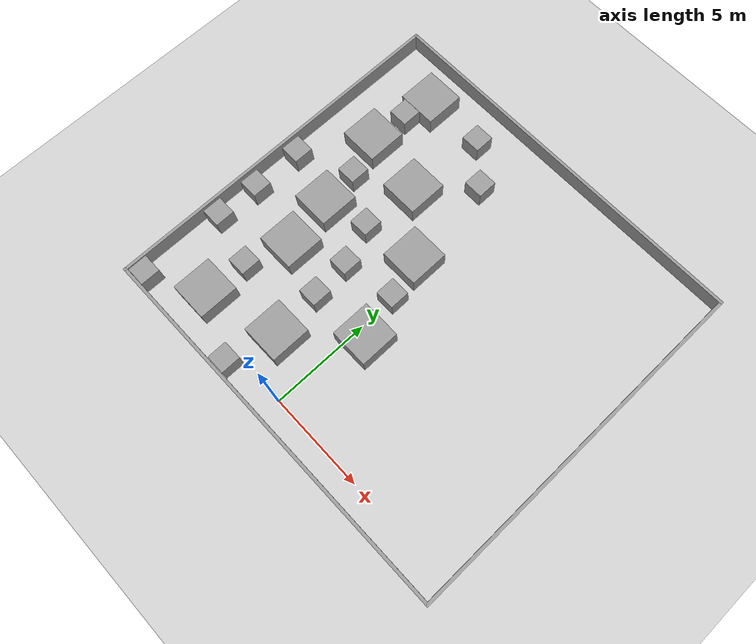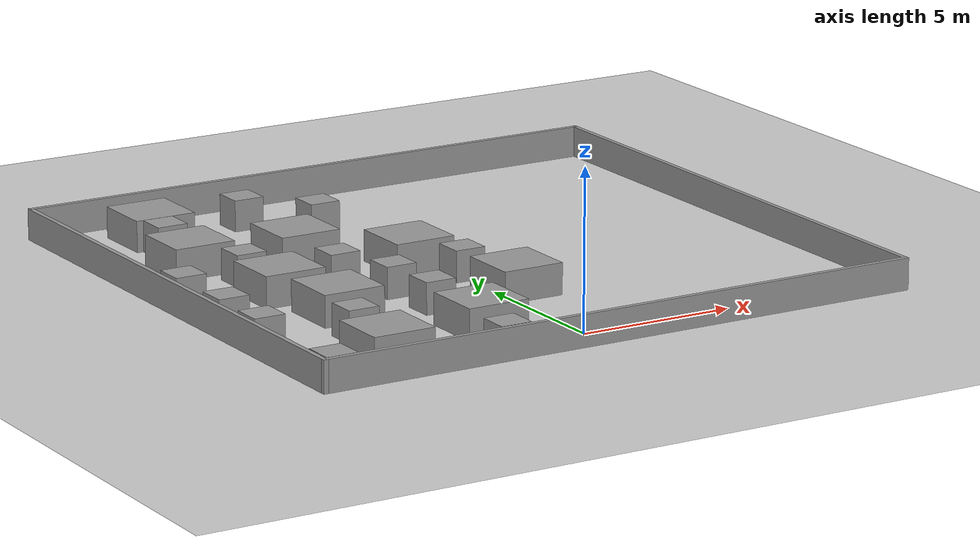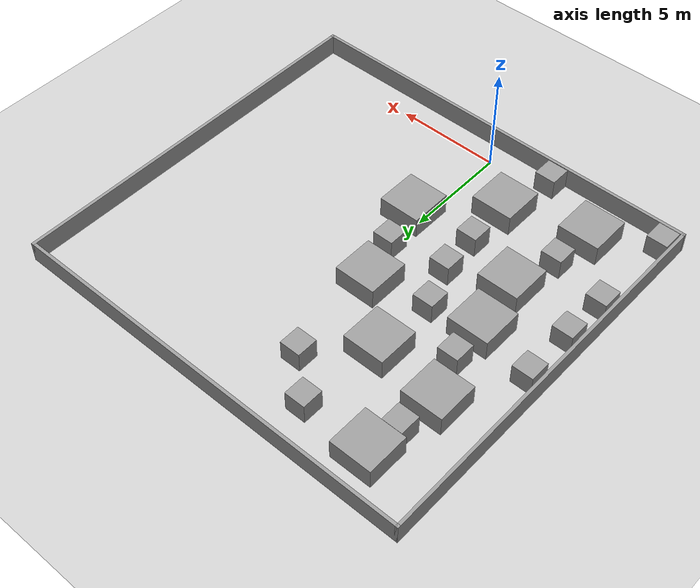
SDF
<sdf version="1.6">
 <world name="default">
  <model name="ground_plane">
   <static>1</static>
   <link name="link">
    <collision name="collision">
     <geometry><plane><normal>0 0 1</normal><size>100 100</size></plane></geometry>
     <surface><friction><ode><mu>100</mu><mu2>50</mu2></ode></friction></surface>
    </collision>
    <visual name="visual">
     <cast_shadows>0</cast_shadows>
     <geometry><plane><normal>0 0 1</normal><size>100 100</size></plane></geometry>
     <material>
      <script><uri>file://media/materials/scripts/gazebo.material</uri><name>Gazebo/Grey</name></script>
     </material>
    </visual>
   </link>
  </model>
  <model name="map1">
   <pose>0.697678 8.0747 0 0 -0 0</pose>
   <link name="Wall_0">
    <collision name="Wall_0_Collision">
     <geometry><box><size>20 0.15 1</size></box></geometry>
     <pose>0 0 0.5 0 -0 0</pose>
    </collision>
    <visual name="Wall_0_Visual">
     <pose>0 0 0.5 0 -0 0</pose>
     <geometry><box><size>20 0.15 1</size></box></geometry>
     <material>
      <script><uri>file://media/materials/scripts/gazebo.material</uri><name>Gazebo/Grey</name></script>
      <ambient>1 1 1 1</ambient>
     </material>
     <meta><layer>0</layer></meta>
    </visual>
    <pose>0 9.175 0 0 -0 0</pose>
   </link>
   <link name="Wall_3">
    <collision name="Wall_3_Collision">
     <geometry><box><size>18.5 0.15 1</size></box></geometry>
     <pose>0 0 0.5 0 -0 0</pose>
    </collision>
    <visual name="Wall_3_Visual">
     <pose>0 0 0.5 0 -0 0</pose>
     <geometry><box><size>18.5 0.15 1</size></box></geometry>
     <material>
      <script><uri>file://media/materials/scripts/gazebo.material</uri><name>Gazebo/Grey</name></script>
      <ambient>1 1 1 1</ambient>
     </material>
     <meta><layer>0</layer></meta>
    </visual>
    <pose>9.925 0 0 0 -0 -1.5708</pose>
   </link>
   <link name="Wall_4">
    <collision name="Wall_4_Collision">
     <geometry><box><size>20 0.15 1</size></box></geometry>
     <pose>0 0 0.5 0 -0 0</pose>
    </collision>
    <visual name="Wall_4_Visual">
     <pose>0 0 0.5 0 -0 0</pose>
     <geometry><box><size>20 0.15 1</size></box></geometry>
     <material>
      <script><uri>file://media/materials/scripts/gazebo.material</uri><name>Gazebo/Grey</name></script>
      <ambient>1 1 1 1</ambient>
     </material>
     <meta><layer>0</layer></meta>
    </visual>
    <pose>0 -9.175 0 0 -0 3.14159</pose>
   </link>
   <link name="Wall_5">
    <collision name="Wall_5_Collision">
     <geometry><box><size>18.5 0.15 1</size></box></geometry>
     <pose>0 0 0.5 0 -0 0</pose>
    </collision>
    <visual name="Wall_5_Visual">
     <pose>0 0 0.5 0 -0 0</pose>
     <geometry><box><size>18.5 0.15 1</size></box></geometry>
     <material>
      <script><uri>file://media/materials/scripts/gazebo.material</uri><name>Gazebo/Grey</name></script>
      <ambient>1 1 1 1</ambient>
     </material>
     <meta><layer>0</layer></meta>
    </visual>
    <pose>-9.925 0 0 0 -0 1.5708</pose>
   </link>
   <static>1</static>
  </model>
  <model name="box3_clone_2">
   <link name="link_0">
    <inertial>
     <mass>200</mass>
     <inertia><ixx>83.3333</ixx><ixy>0</ixy><ixz>0</ixz><iyy>83.3333</iyy><iyz>0</iyz><izz>133.333</izz></inertia>
     <pose>0 0 1 0 -0 0</pose>
    </inertial>
    <visual name="visual">
     <geometry><box><size>2 2 1</size></box></geometry>
     <material>
      <lighting>1</lighting>
      <script><uri>file://media/materials/scripts/gazebo.material</uri><name>Gazebo/Grey</name></script>
      <shader type="pixel"><normal_map>__default__</normal_map></shader>
      <ambient>0.3 0.3 0.3 1</ambient>
      <diffuse>0.7 0.7 0.7 1</diffuse>
      <specular>0.01 0.01 0.01 1</specular>
      <emissive>0 0 0 1</emissive>
     </material>
    </visual>
    <collision name="collision">
     <geometry><box><size>2 2 1</size></box></geometry>
     <surface>
      <friction>
       <ode><mu>1</mu><mu2>1</mu2><fdir1>0 0 0</fdir1><slip1>0</slip1><slip2>0</slip2></ode>
       <torsional>
        <coefficient>1</coefficient>
        <patch_radius>0</patch_radius>
        <surface_radius>0</surface_radius>
        <use_patch_radius>1</use_patch_radius>
        <ode><slip>0</slip></ode>
       </torsional>
      </friction>
      <bounce><restitution_coefficient>0</restitution_coefficient><threshold>1e+06</threshold></bounce>
      <contact>
       <collide_without_contact>0</collide_without_contact>
       <collide_without_contact_bitmask>1</collide_without_contact_bitmask>
       <collide_bitmask>1</collide_bitmask>
       <ode>
        <soft_cfm>0</soft_cfm>
        <soft_erp>0.2</soft_erp>
        <kp>1e+13</kp>
        <kd>1</kd>
        <max_vel>0.01</max_vel>
        <min_depth>0</min_depth>
       </ode>
       <bullet>
        <split_impulse>1</split_impulse>
        <split_impulse_penetration_threshold>-0.01</split_impulse_penetration_threshold>
        <soft_cfm>0</soft_cfm>
        <soft_erp>0.2</soft_erp>
        <kp>1e+13</kp>
        <kd>1</kd>
       </bullet>
      </contact>
     </surface>
    </collision>
   </link>
   <static>0</static>
   <pose>0.599355 4.71049 0.499996 -3e-06 1e-06 0.000372</pose>
  </model>
  <model name="box3_clone_2_clone">
   <link name="link_0">
    <inertial>
     <mass>200</mass>
     <inertia><ixx>83.3333</ixx><ixy>0</ixy><ixz>0</ixz><iyy>83.3333</iyy><iyz>0</iyz><izz>133.333</izz></inertia>
     <pose>0 0 1 0 -0 0</pose>
    </inertial>
    <visual name="visual">
     <geometry><box><size>2 2 1</size></box></geometry>
     <material>
      <lighting>1</lighting>
      <script><uri>file://media/materials/scripts/gazebo.material</uri><name>Gazebo/Grey</name></script>
      <shader type="pixel"><normal_map>__default__</normal_map></shader>
      <ambient>0.3 0.3 0.3 1</ambient>
      <diffuse>0.7 0.7 0.7 1</diffuse>
      <specular>0.01 0.01 0.01 1</specular>
      <emissive>0 0 0 1</emissive>
     </material>
    </visual>
    <collision name="collision">
     <geometry><box><size>2 2 1</size></box></geometry>
     <surface>
      <friction>
       <ode><mu>1</mu><mu2>1</mu2><fdir1>0 0 0</fdir1><slip1>0</slip1><slip2>0</slip2></ode>
       <torsional>
        <coefficient>1</coefficient>
        <patch_radius>0</patch_radius>
        <surface_radius>0</surface_radius>
        <use_patch_radius>1</use_patch_radius>
        <ode><slip>0</slip></ode>
       </torsional>
      </friction>
      <bounce><restitution_coefficient>0</restitution_coefficient><threshold>1e+06</threshold></bounce>
      <contact>
       <collide_without_contact>0</collide_without_contact>
       <collide_without_contact_bitmask>1</collide_without_contact_bitmask>
       <collide_bitmask>1</collide_bitmask>
       <ode>
        <soft_cfm>0</soft_cfm>
        <soft_erp>0.2</soft_erp>
        <kp>1e+13</kp>
        <kd>1</kd>
        <max_vel>0.01</max_vel>
        <min_depth>0</min_depth>
       </ode>
       <bullet>
        <split_impulse>1</split_impulse>
        <split_impulse_penetration_threshold>-0.01</split_impulse_penetration_threshold>
        <soft_cfm>0</soft_cfm>
        <soft_erp>0.2</soft_erp>
        <kp>1e+13</kp>
        <kd>1</kd>
       </bullet>
      </contact>
     </surface>
    </collision>
   </link>
   <static>0</static>
   <pose>-2.2638 1.99782 0.499996 1e-06 3e-06 0.000332</pose>
  </model>
  <model name="box3_clone_2_clone_0">
   <link name="link_0">
    <inertial>
     <mass>200</mass>
     <inertia><ixx>83.3333</ixx><ixy>0</ixy><ixz>0</ixz><iyy>83.3333</iyy><iyz>0</iyz><izz>133.333</izz></inertia>
     <pose>0 0 1 0 -0 0</pose>
    </inertial>
    <visual name="visual">
     <geometry><box><size>2 2 1</size></box></geometry>
     <material>
      <lighting>1</lighting>
      <script><uri>file://media/materials/scripts/gazebo.material</uri><name>Gazebo/Grey</name></script>
      <shader type="pixel"><normal_map>__default__</normal_map></shader>
      <ambient>0.3 0.3 0.3 1</ambient>
      <diffuse>0.7 0.7 0.7 1</diffuse>
      <specular>0.01 0.01 0.01 1</specular>
      <emissive>0 0 0 1</emissive>
     </material>
    </visual>
    <collision name="collision">
     <geometry><box><size>2 2 1</size></box></geometry>
     <surface>
      <friction>
       <ode><mu>1</mu><mu2>1</mu2><fdir1>0 0 0</fdir1><slip1>0</slip1><slip2>0</slip2></ode>
       <torsional>
        <coefficient>1</coefficient>
        <patch_radius>0</patch_radius>
        <surface_radius>0</surface_radius>
        <use_patch_radius>1</use_patch_radius>
        <ode><slip>0</slip></ode>
       </torsional>
      </friction>
      <bounce><restitution_coefficient>0</restitution_coefficient><threshold>1e+06</threshold></bounce>
      <contact>
       <collide_without_contact>0</collide_without_contact>
       <collide_without_contact_bitmask>1</collide_without_contact_bitmask>
       <collide_bitmask>1</collide_bitmask>
       <ode>
        <soft_cfm>0</soft_cfm>
        <soft_erp>0.2</soft_erp>
        <kp>1e+13</kp>
        <kd>1</kd>
        <max_vel>0.01</max_vel>
        <min_depth>0</min_depth>
       </ode>
       <bullet>
        <split_impulse>1</split_impulse>
        <split_impulse_penetration_threshold>-0.01</split_impulse_penetration_threshold>
        <soft_cfm>0</soft_cfm>
        <soft_erp>0.2</soft_erp>
        <kp>1e+13</kp>
        <kd>1</kd>
       </bullet>
      </contact>
     </surface>
    </collision>
   </link>
   <static>0</static>
   <pose>-5.14191 5.33349 0.499996 3e-06 1e-06 0.000124</pose>
  </model>
  <model name="box">
   <link name="link_3">
    <inertial>
     <mass>1</mass>
     <inertia>
      <ixx>0.166667</ixx>
      <ixy>0</ixy>
      <ixz>0</ixz>
      <iyy>0.166667</iyy>
      <iyz>0</iyz>
      <izz>0.166667</izz>
     </inertia>
    </inertial>
    <pose>-0.10623 1.19174 0.5 0 -0 0</pose>
    <visual name="visual">
     <geometry><box><size>1 1 1</size></box></geometry>
     <material>
      <lighting>1</lighting>
      <script><uri>file://media/materials/scripts/gazebo.material</uri><name>Gazebo/Grey</name></script>
      <shader type="pixel"/>
     </material>
    </visual>
    <collision name="collision">
     <geometry><box><size>1 1 1</size></box></geometry>
     <surface>
      <friction>
       <ode><mu>1</mu><mu2>1</mu2><fdir1>0 0 0</fdir1><slip1>0</slip1><slip2>0</slip2></ode>
       <torsional>
        <coefficient>1</coefficient>
        <patch_radius>0</patch_radius>
        <surface_radius>0</surface_radius>
        <use_patch_radius>1</use_patch_radius>
        <ode><slip>0</slip></ode>
       </torsional>
      </friction>
      <bounce><restitution_coefficient>0</restitution_coefficient><threshold>1e+06</threshold></bounce>
      <contact>
       <collide_without_contact>0</collide_without_contact>
       <collide_without_contact_bitmask>1</collide_without_contact_bitmask>
       <collide_bitmask>1</collide_bitmask>
       <ode>
        <soft_cfm>0</soft_cfm>
        <soft_erp>0.2</soft_erp>
        <kp>1e+13</kp>
        <kd>1</kd>
        <max_vel>0.01</max_vel>
        <min_depth>0</min_depth>
       </ode>
       <bullet>
        <split_impulse>1</split_impulse>
        <split_impulse_penetration_threshold>-0.01</split_impulse_penetration_threshold>
        <soft_cfm>0</soft_cfm>
        <soft_erp>0.2</soft_erp>
        <kp>1e+13</kp>
        <kd>1</kd>
       </bullet>
      </contact>
     </surface>
    </collision>
   </link>
   <static>0</static>
   <pose>-2.34355 3.25149 0 0 -0 0</pose>
  </model>
  <model name="box3_clone_2_clone_1">
   <link name="link_0">
    <inertial>
     <mass>200</mass>
     <inertia><ixx>83.3333</ixx><ixy>0</ixy><ixz>0</ixz><iyy>83.3333</iyy><iyz>0</iyz><izz>133.333</izz></inertia>
     <pose>0 0 1 0 -0 0</pose>
    </inertial>
    <visual name="visual">
     <geometry><box><size>2 2 1</size></box></geometry>
     <material>
      <lighting>1</lighting>
      <script><uri>file://media/materials/scripts/gazebo.material</uri><name>Gazebo/Grey</name></script>
      <shader type="pixel"><normal_map>__default__</normal_map></shader>
      <ambient>0.3 0.3 0.3 1</ambient>
      <diffuse>0.7 0.7 0.7 1</diffuse>
      <specular>0.01 0.01 0.01 1</specular>
      <emissive>0 0 0 1</emissive>
     </material>
    </visual>
    <collision name="collision">
     <geometry><box><size>2 2 1</size></box></geometry>
     <surface>
      <friction>
       <ode><mu>1</mu><mu2>1</mu2><fdir1>0 0 0</fdir1><slip1>0</slip1><slip2>0</slip2></ode>
       <torsional>
        <coefficient>1</coefficient>
        <patch_radius>0</patch_radius>
        <surface_radius>0</surface_radius>
        <use_patch_radius>1</use_patch_radius>
        <ode><slip>0</slip></ode>
       </torsional>
      </friction>
      <bounce><restitution_coefficient>0</restitution_coefficient><threshold>1e+06</threshold></bounce>
      <contact>
       <collide_without_contact>0</collide_without_contact>
       <collide_without_contact_bitmask>1</collide_without_contact_bitmask>
       <collide_bitmask>1</collide_bitmask>
       <ode>
        <soft_cfm>0</soft_cfm>
        <soft_erp>0.2</soft_erp>
        <kp>1e+13</kp>
        <kd>1</kd>
        <max_vel>0.01</max_vel>
        <min_depth>0</min_depth>
       </ode>
       <bullet>
        <split_impulse>1</split_impulse>
        <split_impulse_penetration_threshold>-0.01</split_impulse_penetration_threshold>
        <soft_cfm>0</soft_cfm>
        <soft_erp>0.2</soft_erp>
        <kp>1e+13</kp>
        <kd>1</kd>
       </bullet>
      </contact>
     </surface>
    </collision>
   </link>
   <static>0</static>
   <pose>-6.01509 0.963971 0.5 0 -0 0.00035</pose>
  </model>
  <model name="box_clone">
   <link name="link_3">
    <inertial>
     <mass>1</mass>
     <inertia>
      <ixx>0.166667</ixx>
      <ixy>0</ixy>
      <ixz>0</ixz>
      <iyy>0.166667</iyy>
      <iyz>0</iyz>
      <izz>0.166667</izz>
     </inertia>
    </inertial>
    <pose>-0.10623 1.19174 0.5 0 -0 0</pose>
    <visual name="visual">
     <geometry><box><size>1 1 1</size></box></geometry>
     <material>
      <lighting>1</lighting>
      <script><uri>file://media/materials/scripts/gazebo.material</uri><name>Gazebo/Grey</name></script>
      <shader type="pixel"/>
     </material>
    </visual>
    <collision name="collision">
     <geometry><box><size>1 1 1</size></box></geometry>
     <surface>
      <friction>
       <ode><mu>1</mu><mu2>1</mu2><fdir1>0 0 0</fdir1><slip1>0</slip1><slip2>0</slip2></ode>
       <torsional>
        <coefficient>1</coefficient>
        <patch_radius>0</patch_radius>
        <surface_radius>0</surface_radius>
        <use_patch_radius>1</use_patch_radius>
        <ode><slip>0</slip></ode>
       </torsional>
      </friction>
      <bounce><restitution_coefficient>0</restitution_coefficient><threshold>1e+06</threshold></bounce>
      <contact>
       <collide_without_contact>0</collide_without_contact>
       <collide_without_contact_bitmask>1</collide_without_contact_bitmask>
       <collide_bitmask>1</collide_bitmask>
       <ode>
        <soft_cfm>0</soft_cfm>
        <soft_erp>0.2</soft_erp>
        <kp>1e+13</kp>
        <kd>1</kd>
        <max_vel>0.01</max_vel>
        <min_depth>0</min_depth>
       </ode>
       <bullet>
        <split_impulse>1</split_impulse>
        <split_impulse_penetration_threshold>-0.01</split_impulse_penetration_threshold>
        <soft_cfm>0</soft_cfm>
        <soft_erp>0.2</soft_erp>
        <kp>1e+13</kp>
        <kd>1</kd>
       </bullet>
      </contact>
     </surface>
    </collision>
   </link>
   <static>0</static>
   <pose>-5.7246 1.90952 0 0 -0 0</pose>
  </model>
  <model name="box_clone_0">
   <link name="link_3">
    <inertial>
     <mass>1</mass>
     <inertia>
      <ixx>0.166667</ixx>
      <ixy>0</ixy>
      <ixz>0</ixz>
      <iyy>0.166667</iyy>
      <iyz>0</iyz>
      <izz>0.166667</izz>
     </inertia>
    </inertial>
    <pose>-0.10623 1.19174 0.5 0 -0 0</pose>
    <visual name="visual">
     <geometry><box><size>1 1 1</size></box></geometry>
     <material>
      <lighting>1</lighting>
      <script><uri>file://media/materials/scripts/gazebo.material</uri><name>Gazebo/Grey</name></script>
      <shader type="pixel"/>
     </material>
    </visual>
    <collision name="collision">
     <geometry><box><size>1 1 1</size></box></geometry>
     <surface>
      <friction>
       <ode><mu>1</mu><mu2>1</mu2><fdir1>0 0 0</fdir1><slip1>0</slip1><slip2>0</slip2></ode>
       <torsional>
        <coefficient>1</coefficient>
        <patch_radius>0</patch_radius>
        <surface_radius>0</surface_radius>
        <use_patch_radius>1</use_patch_radius>
        <ode><slip>0</slip></ode>
       </torsional>
      </friction>
      <bounce><restitution_coefficient>0</restitution_coefficient><threshold>1e+06</threshold></bounce>
      <contact>
       <collide_without_contact>0</collide_without_contact>
       <collide_without_contact_bitmask>1</collide_without_contact_bitmask>
       <collide_bitmask>1</collide_bitmask>
       <ode>
        <soft_cfm>0</soft_cfm>
        <soft_erp>0.2</soft_erp>
        <kp>1e+13</kp>
        <kd>1</kd>
        <max_vel>0.01</max_vel>
        <min_depth>0</min_depth>
       </ode>
       <bullet>
        <split_impulse>1</split_impulse>
        <split_impulse_penetration_threshold>-0.01</split_impulse_penetration_threshold>
        <soft_cfm>0</soft_cfm>
        <soft_erp>0.2</soft_erp>
        <kp>1e+13</kp>
        <kd>1</kd>
       </bullet>
      </contact>
     </surface>
    </collision>
   </link>
   <static>0</static>
   <pose>-8.4247 2.60163 0 0 -0 0</pose>
  </model>
  <model name="box_clone_2">
   <link name="link_3">
    <inertial>
     <mass>1</mass>
     <inertia>
      <ixx>0.166667</ixx>
      <ixy>0</ixy>
      <ixz>0</ixz>
      <iyy>0.166667</iyy>
      <iyz>0</iyz>
      <izz>0.166667</izz>
     </inertia>
    </inertial>
    <pose>-0.10623 1.19174 0.5 0 -0 0</pose>
    <visual name="visual">
     <geometry><box><size>1 1 1</size></box></geometry>
     <material>
      <lighting>1</lighting>
      <script><uri>file://media/materials/scripts/gazebo.material</uri><name>Gazebo/Grey</name></script>
      <shader type="pixel"/>
     </material>
    </visual>
    <collision name="collision">
     <geometry><box><size>1 1 1</size></box></geometry>
     <surface>
      <friction>
       <ode><mu>1</mu><mu2>1</mu2><fdir1>0 0 0</fdir1><slip1>0</slip1><slip2>0</slip2></ode>
       <torsional>
        <coefficient>1</coefficient>
        <patch_radius>0</patch_radius>
        <surface_radius>0</surface_radius>
        <use_patch_radius>1</use_patch_radius>
        <ode><slip>0</slip></ode>
       </torsional>
      </friction>
      <bounce><restitution_coefficient>0</restitution_coefficient><threshold>1e+06</threshold></bounce>
      <contact>
       <collide_without_contact>0</collide_without_contact>
       <collide_without_contact_bitmask>1</collide_without_contact_bitmask>
       <collide_bitmask>1</collide_bitmask>
       <ode>
        <soft_cfm>0</soft_cfm>
        <soft_erp>0.2</soft_erp>
        <kp>1e+13</kp>
        <kd>1</kd>
        <max_vel>0.01</max_vel>
        <min_depth>0</min_depth>
       </ode>
       <bullet>
        <split_impulse>1</split_impulse>
        <split_impulse_penetration_threshold>-0.01</split_impulse_penetration_threshold>
        <soft_cfm>0</soft_cfm>
        <soft_erp>0.2</soft_erp>
        <kp>1e+13</kp>
        <kd>1</kd>
       </bullet>
      </contact>
     </surface>
    </collision>
   </link>
   <static>0</static>
   <pose>0.150156 5.70574 0 0 -0 0</pose>
  </model>
  <model name="box_clone_3">
   <link name="link_3">
    <inertial>
     <mass>1</mass>
     <inertia>
      <ixx>0.166667</ixx>
      <ixy>0</ixy>
      <ixz>0</ixz>
      <iyy>0.166667</iyy>
      <iyz>0</iyz>
      <izz>0.166667</izz>
     </inertia>
    </inertial>
    <pose>-0.10623 1.19174 0.5 0 -0 0</pose>
    <visual name="visual">
     <geometry><box><size>1 1 1</size></box></geometry>
     <material>
      <lighting>1</lighting>
      <script><uri>file://media/materials/scripts/gazebo.material</uri><name>Gazebo/Grey</name></script>
      <shader type="pixel"/>
     </material>
    </visual>
    <collision name="collision">
     <geometry><box><size>1 1 1</size></box></geometry>
     <surface>
      <friction>
       <ode><mu>1</mu><mu2>1</mu2><fdir1>0 0 0</fdir1><slip1>0</slip1><slip2>0</slip2></ode>
       <torsional>
        <coefficient>1</coefficient>
        <patch_radius>0</patch_radius>
        <surface_radius>0</surface_radius>
        <use_patch_radius>1</use_patch_radius>
        <ode><slip>0</slip></ode>
       </torsional>
      </friction>
      <bounce><restitution_coefficient>0</restitution_coefficient><threshold>1e+06</threshold></bounce>
      <contact>
       <collide_without_contact>0</collide_without_contact>
       <collide_without_contact_bitmask>1</collide_without_contact_bitmask>
       <collide_bitmask>1</collide_bitmask>
       <ode>
        <soft_cfm>0</soft_cfm>
        <soft_erp>0.2</soft_erp>
        <kp>1e+13</kp>
        <kd>1</kd>
        <max_vel>0.01</max_vel>
        <min_depth>0</min_depth>
       </ode>
       <bullet>
        <split_impulse>1</split_impulse>
        <split_impulse_penetration_threshold>-0.01</split_impulse_penetration_threshold>
        <soft_cfm>0</soft_cfm>
        <soft_erp>0.2</soft_erp>
        <kp>1e+13</kp>
        <kd>1</kd>
       </bullet>
      </contact>
     </surface>
    </collision>
   </link>
   <static>0</static>
   <pose>-3.28539 7.2289 0 0 -0 0</pose>
  </model>
  <model name="box3_clone_2_clone_0_clone">
   <link name="link_0">
    <inertial>
     <mass>200</mass>
     <inertia><ixx>83.3333</ixx><ixy>0</ixy><ixz>0</ixz><iyy>83.3333</iyy><iyz>0</iyz><izz>133.333</izz></inertia>
     <pose>0 0 1 0 -0 0</pose>
    </inertial>
    <visual name="visual">
     <geometry><box><size>2 2 1</size></box></geometry>
     <material>
      <lighting>1</lighting>
      <script><uri>file://media/materials/scripts/gazebo.material</uri><name>Gazebo/Grey</name></script>
      <shader type="pixel"><normal_map>__default__</normal_map></shader>
      <ambient>0.3 0.3 0.3 1</ambient>
      <diffuse>0.7 0.7 0.7 1</diffuse>
      <specular>0.01 0.01 0.01 1</specular>
      <emissive>0 0 0 1</emissive>
     </material>
    </visual>
    <collision name="collision">
     <geometry><box><size>2 2 1</size></box></geometry>
     <surface>
      <friction>
       <ode><mu>1</mu><mu2>1</mu2><fdir1>0 0 0</fdir1><slip1>0</slip1><slip2>0</slip2></ode>
       <torsional>
        <coefficient>1</coefficient>
        <patch_radius>0</patch_radius>
        <surface_radius>0</surface_radius>
        <use_patch_radius>1</use_patch_radius>
        <ode><slip>0</slip></ode>
       </torsional>
      </friction>
      <bounce><restitution_coefficient>0</restitution_coefficient><threshold>1e+06</threshold></bounce>
      <contact>
       <collide_without_contact>0</collide_without_contact>
       <collide_without_contact_bitmask>1</collide_without_contact_bitmask>
       <collide_bitmask>1</collide_bitmask>
       <ode>
        <soft_cfm>0</soft_cfm>
        <soft_erp>0.2</soft_erp>
        <kp>1e+13</kp>
        <kd>1</kd>
        <max_vel>0.01</max_vel>
        <min_depth>0</min_depth>
       </ode>
       <bullet>
        <split_impulse>1</split_impulse>
        <split_impulse_penetration_threshold>-0.01</split_impulse_penetration_threshold>
        <soft_cfm>0</soft_cfm>
        <soft_erp>0.2</soft_erp>
        <kp>1e+13</kp>
        <kd>1</kd>
       </bullet>
      </contact>
     </surface>
    </collision>
   </link>
   <static>0</static>
   <pose>-5.6582 7.91578 0.499996 -1e-06 3e-06 0.000488</pose>
  </model>
  <model name="box3_clone_2_clone_0_clone_0">
   <link name="link_0">
    <inertial>
     <mass>200</mass>
     <inertia><ixx>83.3333</ixx><ixy>0</ixy><ixz>0</ixz><iyy>83.3333</iyy><iyz>0</iyz><izz>133.333</izz></inertia>
     <pose>0 0 1 0 -0 0</pose>
    </inertial>
    <visual name="visual">
     <geometry><box><size>2 2 1</size></box></geometry>
     <material>
      <lighting>1</lighting>
      <script><uri>file://media/materials/scripts/gazebo.material</uri><name>Gazebo/Grey</name></script>
      <shader type="pixel"><normal_map>__default__</normal_map></shader>
      <ambient>0.3 0.3 0.3 1</ambient>
      <diffuse>0.7 0.7 0.7 1</diffuse>
      <specular>0.01 0.01 0.01 1</specular>
      <emissive>0 0 0 1</emissive>
     </material>
    </visual>
    <collision name="collision">
     <geometry><box><size>2 2 1</size></box></geometry>
     <surface>
      <friction>
       <ode><mu>1</mu><mu2>1</mu2><fdir1>0 0 0</fdir1><slip1>0</slip1><slip2>0</slip2></ode>
       <torsional>
        <coefficient>1</coefficient>
        <patch_radius>0</patch_radius>
        <surface_radius>0</surface_radius>
        <use_patch_radius>1</use_patch_radius>
        <ode><slip>0</slip></ode>
       </torsional>
      </friction>
      <bounce><restitution_coefficient>0</restitution_coefficient><threshold>1e+06</threshold></bounce>
      <contact>
       <collide_without_contact>0</collide_without_contact>
       <collide_without_contact_bitmask>1</collide_without_contact_bitmask>
       <collide_bitmask>1</collide_bitmask>
       <ode>
        <soft_cfm>0</soft_cfm>
        <soft_erp>0.2</soft_erp>
        <kp>1e+13</kp>
        <kd>1</kd>
        <max_vel>0.01</max_vel>
        <min_depth>0</min_depth>
       </ode>
       <bullet>
        <split_impulse>1</split_impulse>
        <split_impulse_penetration_threshold>-0.01</split_impulse_penetration_threshold>
        <soft_cfm>0</soft_cfm>
        <soft_erp>0.2</soft_erp>
        <kp>1e+13</kp>
        <kd>1</kd>
       </bullet>
      </contact>
     </surface>
    </collision>
   </link>
   <static>0</static>
   <pose>-0.621552 8.90426 0.5 0 -0 0.000648</pose>
  </model>
  <model name="box_clone_2_clone">
   <link name="link_3">
    <inertial>
     <mass>1</mass>
     <inertia>
      <ixx>0.166667</ixx>
      <ixy>0</ixy>
      <ixz>0</ixz>
      <iyy>0.166667</iyy>
      <iyz>0</iyz>
      <izz>0.166667</izz>
     </inertia>
    </inertial>
    <pose>-0.10623 1.19174 0.5 0 -0 0</pose>
    <visual name="visual">
     <geometry><box><size>1 1 1</size></box></geometry>
     <material>
      <lighting>1</lighting>
      <script><uri>file://media/materials/scripts/gazebo.material</uri><name>Gazebo/Grey</name></script>
      <shader type="pixel"/>
     </material>
    </visual>
    <collision name="collision">
     <geometry><box><size>1 1 1</size></box></geometry>
     <surface>
      <friction>
       <ode><mu>1</mu><mu2>1</mu2><fdir1>0 0 0</fdir1><slip1>0</slip1><slip2>0</slip2></ode>
       <torsional>
        <coefficient>1</coefficient>
        <patch_radius>0</patch_radius>
        <surface_radius>0</surface_radius>
        <use_patch_radius>1</use_patch_radius>
        <ode><slip>0</slip></ode>
       </torsional>
      </friction>
      <bounce><restitution_coefficient>0</restitution_coefficient><threshold>1e+06</threshold></bounce>
      <contact>
       <collide_without_contact>0</collide_without_contact>
       <collide_without_contact_bitmask>1</collide_without_contact_bitmask>
       <collide_bitmask>1</collide_bitmask>
       <ode>
        <soft_cfm>0</soft_cfm>
        <soft_erp>0.2</soft_erp>
        <kp>1e+13</kp>
        <kd>1</kd>
        <max_vel>0.01</max_vel>
        <min_depth>0</min_depth>
       </ode>
       <bullet>
        <split_impulse>1</split_impulse>
        <split_impulse_penetration_threshold>-0.01</split_impulse_penetration_threshold>
        <soft_cfm>0</soft_cfm>
        <soft_erp>0.2</soft_erp>
        <kp>1e+13</kp>
        <kd>1</kd>
       </bullet>
      </contact>
     </surface>
    </collision>
   </link>
   <static>0</static>
   <pose>-2.51248 5.24742 0 0 -0 0</pose>
  </model>
  <model name="box3_clone_1_clone_clone_0">
   <link name="link_0">
    <inertial>
     <mass>200</mass>
     <inertia><ixx>83.3333</ixx><ixy>0</ixy><ixz>0</ixz><iyy>83.3333</iyy><iyz>0</iyz><izz>133.333</izz></inertia>
     <pose>0 0 1 0 -0 0</pose>
    </inertial>
    <visual name="visual">
     <geometry><box><size>2 2 1</size></box></geometry>
     <material>
      <lighting>1</lighting>
      <script><uri>file://media/materials/scripts/gazebo.material</uri><name>Gazebo/Grey</name></script>
      <shader type="pixel"><normal_map>__default__</normal_map></shader>
      <ambient>0.3 0.3 0.3 1</ambient>
      <diffuse>0.7 0.7 0.7 1</diffuse>
      <specular>0.01 0.01 0.01 1</specular>
      <emissive>0 0 0 1</emissive>
     </material>
    </visual>
    <collision name="collision">
     <geometry><box><size>2 2 1</size></box></geometry>
     <surface>
      <friction>
       <ode><mu>1</mu><mu2>1</mu2><fdir1>0 0 0</fdir1><slip1>0</slip1><slip2>0</slip2></ode>
       <torsional>
        <coefficient>1</coefficient>
        <patch_radius>0</patch_radius>
        <surface_radius>0</surface_radius>
        <use_patch_radius>1</use_patch_radius>
        <ode><slip>0</slip></ode>
       </torsional>
      </friction>
      <bounce><restitution_coefficient>0</restitution_coefficient><threshold>1e+06</threshold></bounce>
      <contact>
       <collide_without_contact>0</collide_without_contact>
       <collide_without_contact_bitmask>1</collide_without_contact_bitmask>
       <collide_bitmask>1</collide_bitmask>
       <ode>
        <soft_cfm>0</soft_cfm>
        <soft_erp>0.2</soft_erp>
        <kp>1e+13</kp>
        <kd>1</kd>
        <max_vel>0.01</max_vel>
        <min_depth>0</min_depth>
       </ode>
       <bullet>
        <split_impulse>1</split_impulse>
        <split_impulse_penetration_threshold>-0.01</split_impulse_penetration_threshold>
        <soft_cfm>0</soft_cfm>
        <soft_erp>0.2</soft_erp>
        <kp>1e+13</kp>
        <kd>1</kd>
       </bullet>
      </contact>
     </surface>
    </collision>
   </link>
   <static>0</static>
   <pose>-3.22117 11.3186 0.499996 3e-06 1e-06 0.000568</pose>
  </model>
  <model name="box3_clone_1_clone_clone_1">
   <link name="link_0">
    <inertial>
     <mass>200</mass>
     <inertia><ixx>83.3333</ixx><ixy>0</ixy><ixz>0</ixz><iyy>83.3333</iyy><iyz>0</iyz><izz>133.333</izz></inertia>
     <pose>0 0 1 0 -0 0</pose>
    </inertial>
    <visual name="visual">
     <geometry><box><size>2 2 1</size></box></geometry>
     <material>
      <lighting>1</lighting>
      <script><uri>file://media/materials/scripts/gazebo.material</uri><name>Gazebo/Grey</name></script>
      <shader type="pixel"><normal_map>__default__</normal_map></shader>
      <ambient>0.3 0.3 0.3 1</ambient>
      <diffuse>0.7 0.7 0.7 1</diffuse>
      <specular>0.01 0.01 0.01 1</specular>
      <emissive>0 0 0 1</emissive>
     </material>
    </visual>
    <collision name="collision">
     <geometry><box><size>2 2 1</size></box></geometry>
     <surface>
      <friction>
       <ode><mu>1</mu><mu2>1</mu2><fdir1>0 0 0</fdir1><slip1>0</slip1><slip2>0</slip2></ode>
       <torsional>
        <coefficient>1</coefficient>
        <patch_radius>0</patch_radius>
        <surface_radius>0</surface_radius>
        <use_patch_radius>1</use_patch_radius>
        <ode><slip>0</slip></ode>
       </torsional>
      </friction>
      <bounce><restitution_coefficient>0</restitution_coefficient><threshold>1e+06</threshold></bounce>
      <contact>
       <collide_without_contact>0</collide_without_contact>
       <collide_without_contact_bitmask>1</collide_without_contact_bitmask>
       <collide_bitmask>1</collide_bitmask>
       <ode>
        <soft_cfm>0</soft_cfm>
        <soft_erp>0.2</soft_erp>
        <kp>1e+13</kp>
        <kd>1</kd>
        <max_vel>0.01</max_vel>
        <min_depth>0</min_depth>
       </ode>
       <bullet>
        <split_impulse>1</split_impulse>
        <split_impulse_penetration_threshold>-0.01</split_impulse_penetration_threshold>
        <soft_cfm>0</soft_cfm>
        <soft_erp>0.2</soft_erp>
        <kp>1e+13</kp>
        <kd>1</kd>
       </bullet>
      </contact>
     </surface>
    </collision>
   </link>
   <static>0</static>
   <pose>-6.57475 11.8327 0.499997 -0 -3e-06 0.000603</pose>
  </model>
  <model name="box_clone_3_clone">
   <link name="link_3">
    <inertial>
     <mass>1</mass>
     <inertia>
      <ixx>0.166667</ixx>
      <ixy>0</ixy>
      <ixz>0</ixz>
      <iyy>0.166667</iyy>
      <iyz>0</iyz>
      <izz>0.166667</izz>
     </inertia>
    </inertial>
    <pose>-0.10623 1.19174 0.5 0 -0 0</pose>
    <visual name="visual">
     <geometry><box><size>1 1 1</size></box></geometry>
     <material>
      <lighting>1</lighting>
      <script><uri>file://media/materials/scripts/gazebo.material</uri><name>Gazebo/Grey</name></script>
      <shader type="pixel"/>
     </material>
    </visual>
    <collision name="collision">
     <geometry><box><size>1 1 1</size></box></geometry>
     <surface>
      <friction>
       <ode><mu>1</mu><mu2>1</mu2><fdir1>0 0 0</fdir1><slip1>0</slip1><slip2>0</slip2></ode>
       <torsional>
        <coefficient>1</coefficient>
        <patch_radius>0</patch_radius>
        <surface_radius>0</surface_radius>
        <use_patch_radius>1</use_patch_radius>
        <ode><slip>0</slip></ode>
       </torsional>
      </friction>
      <bounce><restitution_coefficient>0</restitution_coefficient><threshold>1e+06</threshold></bounce>
      <contact>
       <collide_without_contact>0</collide_without_contact>
       <collide_without_contact_bitmask>1</collide_without_contact_bitmask>
       <collide_bitmask>1</collide_bitmask>
       <ode>
        <soft_cfm>0</soft_cfm>
        <soft_erp>0.2</soft_erp>
        <kp>1e+13</kp>
        <kd>1</kd>
        <max_vel>0.01</max_vel>
        <min_depth>0</min_depth>
       </ode>
       <bullet>
        <split_impulse>1</split_impulse>
        <split_impulse_penetration_threshold>-0.01</split_impulse_penetration_threshold>
        <soft_cfm>0</soft_cfm>
        <soft_erp>0.2</soft_erp>
        <kp>1e+13</kp>
        <kd>1</kd>
       </bullet>
      </contact>
     </surface>
    </collision>
   </link>
   <static>0</static>
   <pose>-5.70751 8.63776 0 0 -0 0</pose>
  </model>
  <model name="box_clone_3_clone_0">
   <link name="link_3">
    <inertial>
     <mass>1</mass>
     <inertia>
      <ixx>0.166667</ixx>
      <ixy>0</ixy>
      <ixz>0</ixz>
      <iyy>0.166667</iyy>
      <iyz>0</iyz>
      <izz>0.166667</izz>
     </inertia>
    </inertial>
    <pose>-0.10623 1.19174 0.5 0 -0 0</pose>
    <visual name="visual">
     <geometry><box><size>1 1 1</size></box></geometry>
     <material>
      <lighting>1</lighting>
      <script><uri>file://media/materials/scripts/gazebo.material</uri><name>Gazebo/Grey</name></script>
      <shader type="pixel"/>
     </material>
    </visual>
    <collision name="collision">
     <geometry><box><size>1 1 1</size></box></geometry>
     <surface>
      <friction>
       <ode><mu>1</mu><mu2>1</mu2><fdir1>0 0 0</fdir1><slip1>0</slip1><slip2>0</slip2></ode>
       <torsional>
        <coefficient>1</coefficient>
        <patch_radius>0</patch_radius>
        <surface_radius>0</surface_radius>
        <use_patch_radius>1</use_patch_radius>
        <ode><slip>0</slip></ode>
       </torsional>
      </friction>
      <bounce><restitution_coefficient>0</restitution_coefficient><threshold>1e+06</threshold></bounce>
      <contact>
       <collide_without_contact>0</collide_without_contact>
       <collide_without_contact_bitmask>1</collide_without_contact_bitmask>
       <collide_bitmask>1</collide_bitmask>
       <ode>
        <soft_cfm>0</soft_cfm>
        <soft_erp>0.2</soft_erp>
        <kp>1e+13</kp>
        <kd>1</kd>
        <max_vel>0.01</max_vel>
        <min_depth>0</min_depth>
       </ode>
       <bullet>
        <split_impulse>1</split_impulse>
        <split_impulse_penetration_threshold>-0.01</split_impulse_penetration_threshold>
        <soft_cfm>0</soft_cfm>
        <soft_erp>0.2</soft_erp>
        <kp>1e+13</kp>
        <kd>1</kd>
       </bullet>
      </contact>
     </surface>
    </collision>
   </link>
   <static>0</static>
   <pose>-8.389 7.4311 0 0 -0 0</pose>
  </model>
  <model name="box_clone_3_clone_1">
   <link name="link_3">
    <inertial>
     <mass>1</mass>
     <inertia>
      <ixx>0.166667</ixx>
      <ixy>0</ixy>
      <ixz>0</ixz>
      <iyy>0.166667</iyy>
      <iyz>0</iyz>
      <izz>0.166667</izz>
     </inertia>
    </inertial>
    <pose>-0.10623 1.19174 0.5 0 -0 0</pose>
    <visual name="visual">
     <geometry><box><size>1 1 1</size></box></geometry>
     <material>
      <lighting>1</lighting>
      <script><uri>file://media/materials/scripts/gazebo.material</uri><name>Gazebo/Grey</name></script>
      <shader type="pixel"/>
     </material>
    </visual>
    <collision name="collision">
     <geometry><box><size>1 1 1</size></box></geometry>
     <surface>
      <friction>
       <ode><mu>1</mu><mu2>1</mu2><fdir1>0 0 0</fdir1><slip1>0</slip1><slip2>0</slip2></ode>
       <torsional>
        <coefficient>1</coefficient>
        <patch_radius>0</patch_radius>
        <surface_radius>0</surface_radius>
        <use_patch_radius>1</use_patch_radius>
        <ode><slip>0</slip></ode>
       </torsional>
      </friction>
      <bounce><restitution_coefficient>0</restitution_coefficient><threshold>1e+06</threshold></bounce>
      <contact>
       <collide_without_contact>0</collide_without_contact>
       <collide_without_contact_bitmask>1</collide_without_contact_bitmask>
       <collide_bitmask>1</collide_bitmask>
       <ode>
        <soft_cfm>0</soft_cfm>
        <soft_erp>0.2</soft_erp>
        <kp>1e+13</kp>
        <kd>1</kd>
        <max_vel>0.01</max_vel>
        <min_depth>0</min_depth>
       </ode>
       <bullet>
        <split_impulse>1</split_impulse>
        <split_impulse_penetration_threshold>-0.01</split_impulse_penetration_threshold>
        <soft_cfm>0</soft_cfm>
        <soft_erp>0.2</soft_erp>
        <kp>1e+13</kp>
        <kd>1</kd>
       </bullet>
      </contact>
     </surface>
    </collision>
   </link>
   <static>0</static>
   <pose>-8.37556 4.82234 0 0 -0 0</pose>
  </model>
  <model name="box_clone_3_clone_2">
   <link name="link_3">
    <inertial>
     <mass>1</mass>
     <inertia>
      <ixx>0.166667</ixx>
      <ixy>0</ixy>
      <ixz>0</ixz>
      <iyy>0.166667</iyy>
      <iyz>0</iyz>
      <izz>0.166667</izz>
     </inertia>
    </inertial>
    <pose>-0.10623 1.19174 0.5 0 -0 0</pose>
    <visual name="visual">
     <geometry><box><size>1 1 1</size></box></geometry>
     <material>
      <lighting>1</lighting>
      <script><uri>file://media/materials/scripts/gazebo.material</uri><name>Gazebo/Grey</name></script>
      <shader type="pixel"/>
     </material>
    </visual>
    <collision name="collision">
     <geometry><box><size>1 1 1</size></box></geometry>
     <surface>
      <friction>
       <ode><mu>1</mu><mu2>1</mu2><fdir1>0 0 0</fdir1><slip1>0</slip1><slip2>0</slip2></ode>
       <torsional>
        <coefficient>1</coefficient>
        <patch_radius>0</patch_radius>
        <surface_radius>0</surface_radius>
        <use_patch_radius>1</use_patch_radius>
        <ode><slip>0</slip></ode>
       </torsional>
      </friction>
      <bounce><restitution_coefficient>0</restitution_coefficient><threshold>1e+06</threshold></bounce>
      <contact>
       <collide_without_contact>0</collide_without_contact>
       <collide_without_contact_bitmask>1</collide_without_contact_bitmask>
       <collide_bitmask>1</collide_bitmask>
       <ode>
        <soft_cfm>0</soft_cfm>
        <soft_erp>0.2</soft_erp>
        <kp>1e+13</kp>
        <kd>1</kd>
        <max_vel>0.01</max_vel>
        <min_depth>0</min_depth>
       </ode>
       <bullet>
        <split_impulse>1</split_impulse>
        <split_impulse_penetration_threshold>-0.01</split_impulse_penetration_threshold>
        <soft_cfm>0</soft_cfm>
        <soft_erp>0.2</soft_erp>
        <kp>1e+13</kp>
        <kd>1</kd>
       </bullet>
      </contact>
     </surface>
    </collision>
   </link>
   <static>0</static>
   <pose>-0.997735 12.4885 0 0 -0 0</pose>
  </model>
  <model name="box_clone_1_clone_clone_clone_0_clone_3">
   <link name="link_3">
    <inertial>
     <mass>1</mass>
     <inertia>
      <ixx>0.166667</ixx>
      <ixy>0</ixy>
      <ixz>0</ixz>
      <iyy>0.166667</iyy>
      <iyz>0</iyz>
      <izz>0.166667</izz>
     </inertia>
    </inertial>
    <pose>-0.10623 1.19174 0.5 0 -0 0</pose>
    <visual name="visual">
     <geometry><box><size>1 1 1</size></box></geometry>
     <material>
      <lighting>1</lighting>
      <script><uri>file://media/materials/scripts/gazebo.material</uri><name>Gazebo/Grey</name></script>
      <shader type="pixel"/>
     </material>
    </visual>
    <collision name="collision">
     <geometry><box><size>1 1 1</size></box></geometry>
     <surface>
      <friction>
       <ode><mu>1</mu><mu2>1</mu2><fdir1>0 0 0</fdir1><slip1>0</slip1><slip2>0</slip2></ode>
       <torsional>
        <coefficient>1</coefficient>
        <patch_radius>0</patch_radius>
        <surface_radius>0</surface_radius>
        <use_patch_radius>1</use_patch_radius>
        <ode><slip>0</slip></ode>
       </torsional>
      </friction>
      <bounce><restitution_coefficient>0</restitution_coefficient><threshold>1e+06</threshold></bounce>
      <contact>
       <collide_without_contact>0</collide_without_contact>
       <collide_without_contact_bitmask>1</collide_without_contact_bitmask>
       <collide_bitmask>1</collide_bitmask>
       <ode>
        <soft_cfm>0</soft_cfm>
        <soft_erp>0.2</soft_erp>
        <kp>1e+13</kp>
        <kd>1</kd>
        <max_vel>0.01</max_vel>
        <min_depth>0</min_depth>
       </ode>
       <bullet>
        <split_impulse>1</split_impulse>
        <split_impulse_penetration_threshold>-0.01</split_impulse_penetration_threshold>
        <soft_cfm>0</soft_cfm>
        <soft_erp>0.2</soft_erp>
        <kp>1e+13</kp>
        <kd>1</kd>
       </bullet>
      </contact>
     </surface>
    </collision>
   </link>
   <static>0</static>
   <pose>-6.28138 12.5806 0 0 -0 0</pose>
  </model>
  <model name="box3_clone_1_clone_clone_1_clone">
   <link name="link_0">
    <inertial>
     <mass>200</mass>
     <inertia><ixx>83.3333</ixx><ixy>0</ixy><ixz>0</ixz><iyy>83.3333</iyy><iyz>0</iyz><izz>133.333</izz></inertia>
     <pose>0 0 1 0 -0 0</pose>
    </inertial>
    <visual name="visual">
     <geometry><box><size>2 2 1</size></box></geometry>
     <material>
      <lighting>1</lighting>
      <script><uri>file://media/materials/scripts/gazebo.material</uri><name>Gazebo/Grey</name></script>
      <shader type="pixel"><normal_map>__default__</normal_map></shader>
      <ambient>0.3 0.3 0.3 1</ambient>
      <diffuse>0.7 0.7 0.7 1</diffuse>
      <specular>0.01 0.01 0.01 1</specular>
      <emissive>0 0 0 1</emissive>
     </material>
    </visual>
    <collision name="collision">
     <geometry><box><size>2 2 1</size></box></geometry>
     <surface>
      <friction>
       <ode><mu>1</mu><mu2>1</mu2><fdir1>0 0 0</fdir1><slip1>0</slip1><slip2>0</slip2></ode>
       <torsional>
        <coefficient>1</coefficient>
        <patch_radius>0</patch_radius>
        <surface_radius>0</surface_radius>
        <use_patch_radius>1</use_patch_radius>
        <ode><slip>0</slip></ode>
       </torsional>
      </friction>
      <bounce><restitution_coefficient>0</restitution_coefficient><threshold>1e+06</threshold></bounce>
      <contact>
       <collide_without_contact>0</collide_without_contact>
       <collide_without_contact_bitmask>1</collide_without_contact_bitmask>
       <collide_bitmask>1</collide_bitmask>
       <ode>
        <soft_cfm>0</soft_cfm>
        <soft_erp>0.2</soft_erp>
        <kp>1e+13</kp>
        <kd>1</kd>
        <max_vel>0.01</max_vel>
        <min_depth>0</min_depth>
       </ode>
       <bullet>
        <split_impulse>1</split_impulse>
        <split_impulse_penetration_threshold>-0.01</split_impulse_penetration_threshold>
        <soft_cfm>0</soft_cfm>
        <soft_erp>0.2</soft_erp>
        <kp>1e+13</kp>
        <kd>1</kd>
       </bullet>
      </contact>
     </surface>
    </collision>
   </link>
   <static>0</static>
   <pose>-6.1086 15.2765 0.499997 0 -3e-06 0.00082</pose>
  </model>
  <model name="box_clone_3_clone_2_clone">
   <link name="link_3">
    <inertial>
     <mass>1</mass>
     <inertia>
      <ixx>0.166667</ixx>
      <ixy>0</ixy>
      <ixz>0</ixz>
      <iyy>0.166667</iyy>
      <iyz>0</iyz>
      <izz>0.166667</izz>
     </inertia>
    </inertial>
    <pose>-0.10623 1.19174 0.5 0 -0 0</pose>
    <visual name="visual">
     <geometry><box><size>1 1 1</size></box></geometry>
     <material>
      <lighting>1</lighting>
      <script><uri>file://media/materials/scripts/gazebo.material</uri><name>Gazebo/Grey</name></script>
      <shader type="pixel"/>
     </material>
    </visual>
    <collision name="collision">
     <geometry><box><size>1 1 1</size></box></geometry>
     <surface>
      <friction>
       <ode><mu>1</mu><mu2>1</mu2><fdir1>0 0 0</fdir1><slip1>0</slip1><slip2>0</slip2></ode>
       <torsional>
        <coefficient>1</coefficient>
        <patch_radius>0</patch_radius>
        <surface_radius>0</surface_radius>
        <use_patch_radius>1</use_patch_radius>
        <ode><slip>0</slip></ode>
       </torsional>
      </friction>
      <bounce><restitution_coefficient>0</restitution_coefficient><threshold>1e+06</threshold></bounce>
      <contact>
       <collide_without_contact>0</collide_without_contact>
       <collide_without_contact_bitmask>1</collide_without_contact_bitmask>
       <collide_bitmask>1</collide_bitmask>
       <ode>
        <soft_cfm>0</soft_cfm>
        <soft_erp>0.2</soft_erp>
        <kp>1e+13</kp>
        <kd>1</kd>
        <max_vel>0.01</max_vel>
        <min_depth>0</min_depth>
       </ode>
       <bullet>
        <split_impulse>1</split_impulse>
        <split_impulse_penetration_threshold>-0.01</split_impulse_penetration_threshold>
        <soft_cfm>0</soft_cfm>
        <soft_erp>0.2</soft_erp>
        <kp>1e+13</kp>
        <kd>1</kd>
       </bullet>
      </contact>
     </surface>
    </collision>
   </link>
   <static>0</static>
   <pose>-2.80083 14.1125 0 0 -0 0</pose>
  </model>
  <model name="box_clone_3_clone_2_clone_1">
   <link name="link_3">
    <inertial>
     <mass>1</mass>
     <inertia>
      <ixx>0.166667</ixx>
      <ixy>0</ixy>
      <ixz>0</ixz>
      <iyy>0.166667</iyy>
      <iyz>0</iyz>
      <izz>0.166667</izz>
     </inertia>
    </inertial>
    <pose>-0.10623 1.19174 0.5 0 -0 0</pose>
    <visual name="visual">
     <geometry><box><size>1 1 1</size></box></geometry>
     <material>
      <lighting>1</lighting>
      <script><uri>file://media/materials/scripts/gazebo.material</uri><name>Gazebo/Grey</name></script>
      <shader type="pixel"/>
     </material>
    </visual>
    <collision name="collision">
     <geometry><box><size>1 1 1</size></box></geometry>
     <surface>
      <friction>
       <ode><mu>1</mu><mu2>1</mu2><fdir1>0 0 0</fdir1><slip1>0</slip1><slip2>0</slip2></ode>
       <torsional>
        <coefficient>1</coefficient>
        <patch_radius>0</patch_radius>
        <surface_radius>0</surface_radius>
        <use_patch_radius>1</use_patch_radius>
        <ode><slip>0</slip></ode>
       </torsional>
      </friction>
      <bounce><restitution_coefficient>0</restitution_coefficient><threshold>1e+06</threshold></bounce>
      <contact>
       <collide_without_contact>0</collide_without_contact>
       <collide_without_contact_bitmask>1</collide_without_contact_bitmask>
       <collide_bitmask>1</collide_bitmask>
       <ode>
        <soft_cfm>0</soft_cfm>
        <soft_erp>0.2</soft_erp>
        <kp>1e+13</kp>
        <kd>1</kd>
        <max_vel>0.01</max_vel>
        <min_depth>0</min_depth>
       </ode>
       <bullet>
        <split_impulse>1</split_impulse>
        <split_impulse_penetration_threshold>-0.01</split_impulse_penetration_threshold>
        <soft_cfm>0</soft_cfm>
        <soft_erp>0.2</soft_erp>
        <kp>1e+13</kp>
        <kd>1</kd>
       </bullet>
      </contact>
     </surface>
    </collision>
   </link>
   <static>0</static>
   <pose>-2.78951 -1.68645 0 0 -0 0</pose>
  </model>
  <model name="box_clone_3_clone_2_clone_2">
   <link name="link_3">
    <inertial>
     <mass>1</mass>
     <inertia>
      <ixx>0.166667</ixx>
      <ixy>0</ixy>
      <ixz>0</ixz>
      <iyy>0.166667</iyy>
      <iyz>0</iyz>
      <izz>0.166667</izz>
     </inertia>
    </inertial>
    <pose>-0.10623 1.19174 0.5 0 -0 0</pose>
    <visual name="visual">
     <geometry><box><size>1 1 1</size></box></geometry>
     <material>
      <lighting>1</lighting>
      <script><uri>file://media/materials/scripts/gazebo.material</uri><name>Gazebo/Grey</name></script>
      <shader type="pixel"/>
     </material>
    </visual>
    <collision name="collision">
     <geometry><box><size>1 1 1</size></box></geometry>
     <surface>
      <friction>
       <ode><mu>1</mu><mu2>1</mu2><fdir1>0 0 0</fdir1><slip1>0</slip1><slip2>0</slip2></ode>
       <torsional>
        <coefficient>1</coefficient>
        <patch_radius>0</patch_radius>
        <surface_radius>0</surface_radius>
        <use_patch_radius>1</use_patch_radius>
        <ode><slip>0</slip></ode>
       </torsional>
      </friction>
      <bounce><restitution_coefficient>0</restitution_coefficient><threshold>1e+06</threshold></bounce>
      <contact>
       <collide_without_contact>0</collide_without_contact>
       <collide_without_contact_bitmask>1</collide_without_contact_bitmask>
       <collide_bitmask>1</collide_bitmask>
       <ode>
        <soft_cfm>0</soft_cfm>
        <soft_erp>0.2</soft_erp>
        <kp>1e+13</kp>
        <kd>1</kd>
        <max_vel>0.01</max_vel>
        <min_depth>0</min_depth>
       </ode>
       <bullet>
        <split_impulse>1</split_impulse>
        <split_impulse_penetration_threshold>-0.01</split_impulse_penetration_threshold>
        <soft_cfm>0</soft_cfm>
        <soft_erp>0.2</soft_erp>
        <kp>1e+13</kp>
        <kd>1</kd>
       </bullet>
      </contact>
     </surface>
    </collision>
   </link>
   <static>0</static>
   <pose>-8.50433 -1.70552 0 0 -0 0</pose>
  </model>
 </world>
</sdf>
